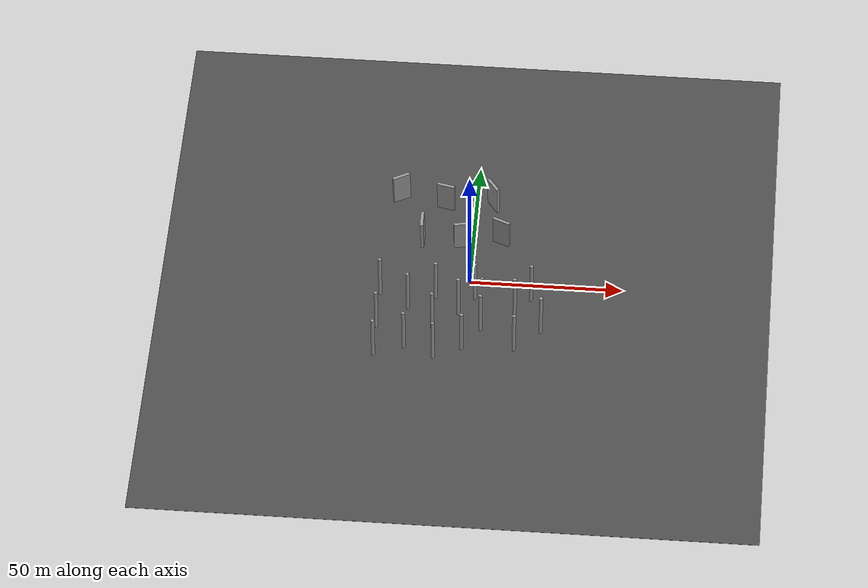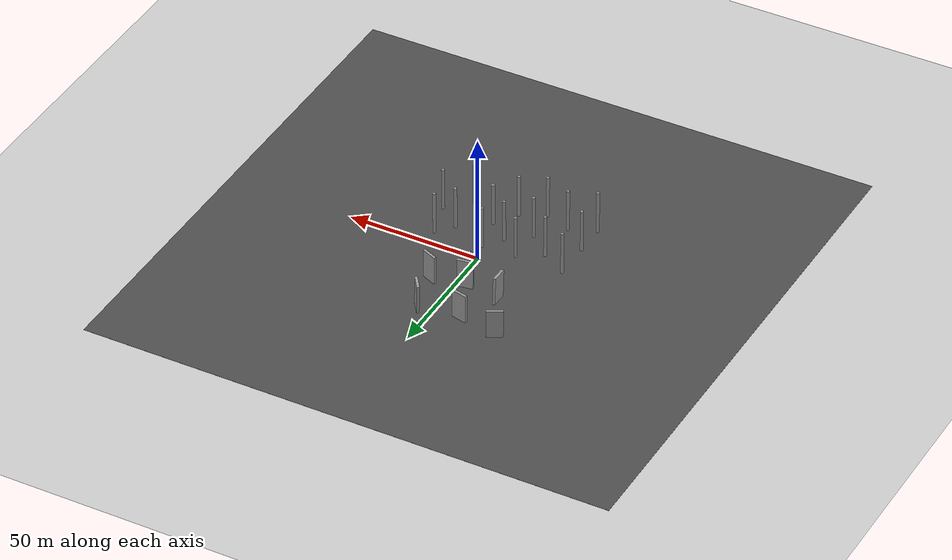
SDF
<sdf version="1.7">
 <world name="default">
  <light name="sun" type="directional">
   <pose>0 0 10 0 -0 0</pose>
   <diffuse>0.8 0.8 0.8 1</diffuse>
   <specular>0.2 0.2 0.2 1</specular>
   <attenuation>
    <range>1000</range>
    <constant>0.9</constant>
    <linear>0.01</linear>
    <quadratic>0.001</quadratic>
   </attenuation>
   <direction>-0.5 0.1 -0.9</direction>
   <spot><inner_angle>0</inner_angle><outer_angle>0</outer_angle><falloff>0</falloff></spot>
  </light>
  <model name="ground_plane">
   <static>1</static>
   <link name="link">
    <collision name="collision">
     <geometry><plane><normal>0 0 1</normal><size>100 100</size></plane></geometry>
     <surface>
      <contact><collide_bitmask>65535</collide_bitmask></contact>
      <friction><ode><mu>100</mu><mu2>50</mu2></ode></friction>
     </surface>
    </collision>
    <visual name="visual">
     <cast_shadows>0</cast_shadows>
     <geometry><plane><normal>0 0 1</normal><size>100 100</size></plane></geometry>
     <material>
      <script><uri>file://media/materials/scripts/gazebo.material</uri><name>Gazebo/Grey</name></script>
     </material>
    </visual>
   </link>
  </model>
  <gravity>0 0 -9.8</gravity>
  <magnetic_field>6e-06 2.3e-05 -4.2e-05</magnetic_field>
  <atmosphere type="adiabatic"/>
  <physics type="ode">
   <max_step_size>0.001</max_step_size>
   <real_time_factor>1</real_time_factor>
   <real_time_update_rate>1000</real_time_update_rate>
  </physics>
  <scene><ambient>0.4 0.4 0.4 1</ambient><background>0.7 0.7 0.7 1</background><shadows>1</shadows></scene>
  <spherical_coordinates>
   <surface_model>EARTH_WGS84</surface_model>
   <latitude_deg>0</latitude_deg>
   <longitude_deg>0</longitude_deg>
   <elevation>0</elevation>
   <heading_deg>0</heading_deg>
  </spherical_coordinates>
  <model name="asphalt_plane">
   <static>1</static>
   <link name="link">
    <collision name="collision"><geometry><box><size>200 200 0.1</size></box></geometry></collision>
    <visual name="visual">
     <cast_shadows>0</cast_shadows>
     <geometry><box><size>200 200 0.1</size></box></geometry>
     <material>
      <script>
       <uri>model://asphalt_plane/materials/scripts</uri>
       <uri>model://asphalt_plane/materials/textures</uri>
       <name>vrc/asphalt</name>
      </script>
     </material>
    </visual>
   </link>
   <pose>-1.35968 -2.14284 0 0 -0 0</pose>
  </model>
  <light name="sun_clone" type="directional">
   <pose>2.84123 -0.478264 10 0 -0 0</pose>
   <diffuse>0.8 0.8 0.8 1</diffuse>
   <specular>0.2 0.2 0.2 1</specular>
   <direction>-0.483368 0.096674 -0.870063</direction>
   <attenuation>
    <range>1000</range>
    <constant>0.9</constant>
    <linear>0.01</linear>
    <quadratic>0.001</quadratic>
   </attenuation>
  </light>
  <light name="sun_clone_clone" type="directional">
   <pose>5.66116 -1.0129 10 0 -0 0</pose>
   <diffuse>0.8 0.8 0.8 1</diffuse>
   <specular>0.2 0.2 0.2 1</specular>
   <direction>-0.483368 0.096674 -0.870063</direction>
   <attenuation>
    <range>1000</range>
    <constant>0.9</constant>
    <linear>0.01</linear>
    <quadratic>0.001</quadratic>
   </attenuation>
  </light>
  <model name="unit_box">
   <pose>3.98024 -0.197411 0.55 -0 -0 -0</pose>
   <link name="link">
    <inertial>
     <mass>1</mass>
     <inertia>
      <ixx>0.166667</ixx>
      <ixy>0</ixy>
      <ixz>0</ixz>
      <iyy>0.166667</iyy>
      <iyz>0</iyz>
      <izz>0.166667</izz>
     </inertia>
    </inertial>
    <collision name="collision"><geometry><box><size>1 1 1</size></box></geometry></collision>
    <visual name="visual">
     <geometry><box><size>1 1 1</size></box></geometry>
     <material>
      <script><name>Gazebo/Grey</name><uri>file://media/materials/scripts/gazebo.material</uri></script>
     </material>
    </visual>
   </link>
  </model>
  <model name="unit_cylinder">
   <pose>3.98128 1.076 0.550003 5e-06 2e-06 -1.3e-05</pose>
   <link name="link">
    <inertial>
     <mass>1</mass>
     <inertia><ixx>0.145833</ixx><ixy>0</ixy><ixz>0</ixz><iyy>0.145833</iyy><iyz>0</iyz><izz>0.125</izz></inertia>
    </inertial>
    <collision name="collision">
     <geometry><cylinder><radius>0.5</radius><length>1</length></cylinder></geometry>
    </collision>
    <visual name="visual">
     <geometry><cylinder><radius>0.5</radius><length>1</length></cylinder></geometry>
     <material>
      <script><name>Gazebo/Grey</name><uri>file://media/materials/scripts/gazebo.material</uri></script>
     </material>
    </visual>
   </link>
  </model>
  <model name="unit_sphere">
   <pose>4.10012 -1.50291 0.55 0 -0 0</pose>
   <link name="link">
    <inertial>
     <mass>1</mass>
     <inertia><ixx>0.1</ixx><ixy>0</ixy><ixz>0</ixz><iyy>0.1</iyy><iyz>0</iyz><izz>0.1</izz></inertia>
    </inertial>
    <collision name="collision"><geometry><sphere><radius>0.5</radius></sphere></geometry></collision>
    <visual name="visual">
     <geometry><sphere><radius>0.5</radius></sphere></geometry>
     <material>
      <script><name>Gazebo/Grey</name><uri>file://media/materials/scripts/gazebo.material</uri></script>
     </material>
    </visual>
   </link>
  </model>
  <model name="unit_cylinder_clone">
   <pose>2.15151 -6.79131 8.42938 -0.004958 0.002097 -0.001293</pose>
   <link name="link">
    <inertial>
     <mass>1</mass>
     <inertia><ixx>0.145833</ixx><ixy>0</ixy><ixz>0</ixz><iyy>0.145833</iyy><iyz>0</iyz><izz>0.125</izz></inertia>
    </inertial>
    <collision name="collision">
     <geometry><cylinder><radius>0.57837</radius><length>16.7528</length></cylinder></geometry>
    </collision>
    <visual name="visual">
     <geometry><cylinder><radius>0.57837</radius><length>16.7528</length></cylinder></geometry>
     <material>
      <script><name>Gazebo/Grey</name><uri>file://media/materials/scripts/gazebo.material</uri></script>
     </material>
    </visual>
   </link>
  </model>
  <model name="unit_cylinder_clone_clone">
   <pose>-2.77428 -13.6933 8.42926 -0.004731 0.002002 -0.001438</pose>
   <link name="link">
    <inertial>
     <mass>1</mass>
     <inertia><ixx>0.145833</ixx><ixy>0</ixy><ixz>0</ixz><iyy>0.145833</iyy><iyz>0</iyz><izz>0.125</izz></inertia>
    </inertial>
    <collision name="collision">
     <geometry><cylinder><radius>0.578368</radius><length>16.7528</length></cylinder></geometry>
    </collision>
    <visual name="visual">
     <geometry><cylinder><radius>0.578368</radius><length>16.7528</length></cylinder></geometry>
     <material>
      <script><name>Gazebo/Grey</name><uri>file://media/materials/scripts/gazebo.material</uri></script>
     </material>
    </visual>
   </link>
  </model>
  <model name="unit_cylinder_clone_clone_0">
   <pose>4.87741 -20.1067 8.42913 -0.004504 0.001909 -0.000852</pose>
   <link name="link">
    <inertial>
     <mass>1</mass>
     <inertia><ixx>0.145833</ixx><ixy>0</ixy><ixz>0</ixz><iyy>0.145833</iyy><iyz>0</iyz><izz>0.125</izz></inertia>
    </inertial>
    <collision name="collision">
     <geometry><cylinder><radius>0.578368</radius><length>16.7528</length></cylinder></geometry>
    </collision>
    <visual name="visual">
     <geometry><cylinder><radius>0.578368</radius><length>16.7528</length></cylinder></geometry>
     <material>
      <script><name>Gazebo/Grey</name><uri>file://media/materials/scripts/gazebo.material</uri></script>
     </material>
    </visual>
   </link>
  </model>
  <model name="unit_cylinder_clone_clone_1">
   <pose>-10.8566 -20.3137 8.42905 -0.004377 0.001855 0.000267</pose>
   <link name="link">
    <inertial>
     <mass>1</mass>
     <inertia><ixx>0.145833</ixx><ixy>0</ixy><ixz>0</ixz><iyy>0.145833</iyy><iyz>0</iyz><izz>0.125</izz></inertia>
    </inertial>
    <collision name="collision">
     <geometry><cylinder><radius>0.578368</radius><length>16.7528</length></cylinder></geometry>
    </collision>
    <visual name="visual">
     <geometry><cylinder><radius>0.578368</radius><length>16.7528</length></cylinder></geometry>
     <material>
      <script><name>Gazebo/Grey</name><uri>file://media/materials/scripts/gazebo.material</uri></script>
     </material>
    </visual>
   </link>
  </model>
  <model name="unit_cylinder_clone_clone_2">
   <pose>-10.6515 -7.30927 8.42902 -0.004312 0.001826 -0.000291</pose>
   <link name="link">
    <inertial>
     <mass>1</mass>
     <inertia><ixx>0.145833</ixx><ixy>0</ixy><ixz>0</ixz><iyy>0.145833</iyy><iyz>0</iyz><izz>0.125</izz></inertia>
    </inertial>
    <collision name="collision">
     <geometry><cylinder><radius>0.578368</radius><length>16.7528</length></cylinder></geometry>
    </collision>
    <visual name="visual">
     <geometry><cylinder><radius>0.578368</radius><length>16.7528</length></cylinder></geometry>
     <material>
      <script><name>Gazebo/Grey</name><uri>file://media/materials/scripts/gazebo.material</uri></script>
     </material>
    </visual>
   </link>
  </model>
  <model name="unit_cylinder_clone_clone_3">
   <pose>-0.607212 -28.6301 8.42896 -0.004214 0.001768 -0.001393</pose>
   <link name="link">
    <inertial>
     <mass>1</mass>
     <inertia><ixx>0.145833</ixx><ixy>0</ixy><ixz>0</ixz><iyy>0.145833</iyy><iyz>0</iyz><izz>0.125</izz></inertia>
    </inertial>
    <collision name="collision">
     <geometry><cylinder><radius>0.578368</radius><length>16.7528</length></cylinder></geometry>
    </collision>
    <visual name="visual">
     <geometry><cylinder><radius>0.578368</radius><length>16.7528</length></cylinder></geometry>
     <material>
      <script><name>Gazebo/Grey</name><uri>file://media/materials/scripts/gazebo.material</uri></script>
     </material>
    </visual>
   </link>
  </model>
  <model name="unit_cylinder_clone_clone_4">
   <pose>15.5175 -12.295 8.42891 -0.004128 0.001734 -0.000939</pose>
   <link name="link">
    <inertial>
     <mass>1</mass>
     <inertia><ixx>0.145833</ixx><ixy>0</ixy><ixz>0</ixz><iyy>0.145833</iyy><iyz>0</iyz><izz>0.125</izz></inertia>
    </inertial>
    <collision name="collision">
     <geometry><cylinder><radius>0.578368</radius><length>16.7528</length></cylinder></geometry>
    </collision>
    <visual name="visual">
     <geometry><cylinder><radius>0.578368</radius><length>16.7528</length></cylinder></geometry>
     <material>
      <script><name>Gazebo/Grey</name><uri>file://media/materials/scripts/gazebo.material</uri></script>
     </material>
    </visual>
   </link>
  </model>
  <model name="unit_cylinder_clone_clone_5">
   <pose>16.3055 -27.8801 8.42882 -0.003981 0.001682 -0.001422</pose>
   <link name="link">
    <inertial>
     <mass>1</mass>
     <inertia><ixx>0.145833</ixx><ixy>0</ixy><ixz>0</ixz><iyy>0.145833</iyy><iyz>0</iyz><izz>0.125</izz></inertia>
    </inertial>
    <collision name="collision">
     <geometry><cylinder><radius>0.578368</radius><length>16.7528</length></cylinder></geometry>
    </collision>
    <visual name="visual">
     <geometry><cylinder><radius>0.578368</radius><length>16.7528</length></cylinder></geometry>
     <material>
      <script><name>Gazebo/Grey</name><uri>file://media/materials/scripts/gazebo.material</uri></script>
     </material>
    </visual>
   </link>
  </model>
  <model name="unit_cylinder_clone_clone_6">
   <pose>-9.65267 -32.9248 8.4288 -0.003948 0.001651 -0.001048</pose>
   <link name="link">
    <inertial>
     <mass>1</mass>
     <inertia><ixx>0.145833</ixx><ixy>0</ixy><ixz>0</ixz><iyy>0.145833</iyy><iyz>0</iyz><izz>0.125</izz></inertia>
    </inertial>
    <collision name="collision">
     <geometry><cylinder><radius>0.578368</radius><length>16.7528</length></cylinder></geometry>
    </collision>
    <visual name="visual">
     <geometry><cylinder><radius>0.578368</radius><length>16.7528</length></cylinder></geometry>
     <material>
      <script><name>Gazebo/Grey</name><uri>file://media/materials/scripts/gazebo.material</uri></script>
     </material>
    </visual>
   </link>
  </model>
  <model name="unit_cylinder_clone_clone_7">
   <pose>-19.4026 -12.5562 8.42873 -0.003831 0.00163 4e-06</pose>
   <link name="link">
    <inertial>
     <mass>1</mass>
     <inertia><ixx>0.145833</ixx><ixy>0</ixy><ixz>0</ixz><iyy>0.145833</iyy><iyz>0</iyz><izz>0.125</izz></inertia>
    </inertial>
    <collision name="collision">
     <geometry><cylinder><radius>0.578368</radius><length>16.7528</length></cylinder></geometry>
    </collision>
    <visual name="visual">
     <geometry><cylinder><radius>0.578368</radius><length>16.7528</length></cylinder></geometry>
     <material>
      <script><name>Gazebo/Grey</name><uri>file://media/materials/scripts/gazebo.material</uri></script>
     </material>
    </visual>
   </link>
  </model>
  <model name="unit_cylinder_clone_clone_8">
   <pose>-19.3928 -29.3507 8.42866 -0.00369 0.001614 -0.002442</pose>
   <link name="link">
    <inertial>
     <mass>1</mass>
     <inertia><ixx>0.145833</ixx><ixy>0</ixy><ixz>0</ixz><iyy>0.145833</iyy><iyz>0</iyz><izz>0.125</izz></inertia>
    </inertial>
    <collision name="collision">
     <geometry><cylinder><radius>0.578368</radius><length>16.7528</length></cylinder></geometry>
    </collision>
    <visual name="visual">
     <geometry><cylinder><radius>0.578368</radius><length>16.7528</length></cylinder></geometry>
     <material>
      <script><name>Gazebo/Grey</name><uri>file://media/materials/scripts/gazebo.material</uri></script>
     </material>
    </visual>
   </link>
  </model>
  <model name="unit_cylinder_clone_clone_9">
   <pose>-28.9779 -21.3017 8.42863 -0.003657 0.001548 -0.001157</pose>
   <link name="link">
    <inertial>
     <mass>1</mass>
     <inertia><ixx>0.145833</ixx><ixy>0</ixy><ixz>0</ixz><iyy>0.145833</iyy><iyz>0</iyz><izz>0.125</izz></inertia>
    </inertial>
    <collision name="collision">
     <geometry><cylinder><radius>0.578368</radius><length>16.7528</length></cylinder></geometry>
    </collision>
    <visual name="visual">
     <geometry><cylinder><radius>0.578368</radius><length>16.7528</length></cylinder></geometry>
     <material>
      <script><name>Gazebo/Grey</name><uri>file://media/materials/scripts/gazebo.material</uri></script>
     </material>
    </visual>
   </link>
  </model>
  <model name="unit_cylinder_clone_clone_10">
   <pose>-28.9643 -6.92442 8.42862 -0.003637 0.001528 7e-05</pose>
   <link name="link">
    <inertial>
     <mass>1</mass>
     <inertia><ixx>0.145833</ixx><ixy>0</ixy><ixz>0</ixz><iyy>0.145833</iyy><iyz>0</iyz><izz>0.125</izz></inertia>
    </inertial>
    <collision name="collision">
     <geometry><cylinder><radius>0.578368</radius><length>16.7528</length></cylinder></geometry>
    </collision>
    <visual name="visual">
     <geometry><cylinder><radius>0.578368</radius><length>16.7528</length></cylinder></geometry>
     <material>
      <script><name>Gazebo/Grey</name><uri>file://media/materials/scripts/gazebo.material</uri></script>
     </material>
    </visual>
   </link>
  </model>
  <model name="unit_cylinder_clone_clone_11">
   <pose>-28.9887 -33.2194 8.4285 -0.003436 0.001521 -0.002362</pose>
   <link name="link">
    <inertial>
     <mass>1</mass>
     <inertia><ixx>0.145833</ixx><ixy>0</ixy><ixz>0</ixz><iyy>0.145833</iyy><iyz>0</iyz><izz>0.125</izz></inertia>
    </inertial>
    <collision name="collision">
     <geometry><cylinder><radius>0.578368</radius><length>16.7528</length></cylinder></geometry>
    </collision>
    <visual name="visual">
     <geometry><cylinder><radius>0.578368</radius><length>16.7528</length></cylinder></geometry>
     <material>
      <script><name>Gazebo/Grey</name><uri>file://media/materials/scripts/gazebo.material</uri></script>
     </material>
    </visual>
   </link>
  </model>
  <model name="unit_cylinder_clone_clone_12">
   <pose>20.5283 -6.24584 8.42843 -0.003325 0.001409 0.000549</pose>
   <link name="link">
    <inertial>
     <mass>1</mass>
     <inertia><ixx>0.145833</ixx><ixy>0</ixy><ixz>0</ixz><iyy>0.145833</iyy><iyz>0</iyz><izz>0.125</izz></inertia>
    </inertial>
    <collision name="collision">
     <geometry><cylinder><radius>0.578368</radius><length>16.7528</length></cylinder></geometry>
    </collision>
    <visual name="visual">
     <geometry><cylinder><radius>0.578368</radius><length>16.7528</length></cylinder></geometry>
     <material>
      <script><name>Gazebo/Grey</name><uri>file://media/materials/scripts/gazebo.material</uri></script>
     </material>
    </visual>
   </link>
  </model>
  <model name="unit_cylinder_clone_clone_13">
   <pose>24.4811 -19.743 8.42832 -0.003101 0.001387 -0.000887</pose>
   <link name="link">
    <inertial>
     <mass>1</mass>
     <inertia><ixx>0.145833</ixx><ixy>0</ixy><ixz>0</ixz><iyy>0.145833</iyy><iyz>0</iyz><izz>0.125</izz></inertia>
    </inertial>
    <collision name="collision">
     <geometry><cylinder><radius>0.578368</radius><length>16.7528</length></cylinder></geometry>
    </collision>
    <visual name="visual">
     <geometry><cylinder><radius>0.578368</radius><length>16.7528</length></cylinder></geometry>
     <material>
      <script><name>Gazebo/Grey</name><uri>file://media/materials/scripts/gazebo.material</uri></script>
     </material>
    </visual>
   </link>
  </model>
  <model name="unit_box_0">
   <pose>-3.55434 15.6884 5.59878 -0.002154 -0.007429 1.70553</pose>
   <link name="link">
    <inertial>
     <mass>1</mass>
     <inertia>
      <ixx>0.166667</ixx>
      <ixy>0</ixy>
      <ixz>0</ixz>
      <iyy>0.166667</iyy>
      <iyz>0</iyz>
      <izz>0.166667</izz>
     </inertia>
    </inertial>
    <collision name="collision"><geometry><box><size>1 5.9412 11.0777</size></box></geometry></collision>
    <visual name="visual">
     <geometry><box><size>1 5.9412 11.0777</size></box></geometry>
     <material>
      <script><name>Gazebo/Grey</name><uri>file://media/materials/scripts/gazebo.material</uri></script>
     </material>
    </visual>
   </link>
  </model>
  <model name="unit_box_0_clone">
   <pose>9.021 17.9694 5.59832 -0.002033 -0.007244 1.16702</pose>
   <link name="link">
    <inertial>
     <mass>1</mass>
     <inertia>
      <ixx>0.166667</ixx>
      <ixy>0</ixy>
      <ixz>0</ixz>
      <iyy>0.166667</iyy>
      <iyz>0</iyz>
      <izz>0.166667</izz>
     </inertia>
    </inertial>
    <collision name="collision"><geometry><box><size>1 5.94121 11.0777</size></box></geometry></collision>
    <visual name="visual">
     <geometry><box><size>1 5.94121 11.0777</size></box></geometry>
     <material>
      <script><name>Gazebo/Grey</name><uri>file://media/materials/scripts/gazebo.material</uri></script>
     </material>
    </visual>
   </link>
  </model>
  <model name="unit_box_0_clone_0">
   <pose>-16.9816 17.0047 5.62099 0.007395 -0.023873 -0.000997</pose>
   <link name="link">
    <inertial>
     <mass>1</mass>
     <inertia>
      <ixx>0.166667</ixx>
      <ixy>0</ixy>
      <ixz>0</ixz>
      <iyy>0.166667</iyy>
      <iyz>0</iyz>
      <izz>0.166667</izz>
     </inertia>
    </inertial>
    <collision name="collision"><geometry><box><size>1 5.94121 11.0777</size></box></geometry></collision>
    <visual name="visual">
     <geometry><box><size>1 5.94121 11.0777</size></box></geometry>
     <material>
      <script><name>Gazebo/Grey</name><uri>file://media/materials/scripts/gazebo.material</uri></script>
     </material>
    </visual>
   </link>
  </model>
  <model name="unit_box_0_clone_2">
   <pose>-10.3827 32.2705 5.61034 -0.006498 -0.004792 1.34157</pose>
   <link name="link">
    <inertial>
     <mass>1</mass>
     <inertia>
      <ixx>0.166667</ixx>
      <ixy>0</ixy>
      <ixz>0</ixz>
      <iyy>0.166667</iyy>
      <iyz>0</iyz>
      <izz>0.166667</izz>
     </inertia>
    </inertial>
    <collision name="collision"><geometry><box><size>1 5.94121 11.0777</size></box></geometry></collision>
    <visual name="visual">
     <geometry><box><size>1 5.94121 11.0777</size></box></geometry>
     <material>
      <script><name>Gazebo/Grey</name><uri>file://media/materials/scripts/gazebo.material</uri></script>
     </material>
    </visual>
   </link>
  </model>
  <model name="unit_box_0_clone_3">
   <pose>5.28244 33.7508 5.59841 -0.000542 -0.017711 0.61948</pose>
   <link name="link">
    <inertial>
     <mass>1</mass>
     <inertia>
      <ixx>0.166667</ixx>
      <ixy>0</ixy>
      <ixz>0</ixz>
      <iyy>0.166667</iyy>
      <iyz>0</iyz>
      <izz>0.166667</izz>
     </inertia>
    </inertial>
    <collision name="collision"><geometry><box><size>1 5.94121 11.0777</size></box></geometry></collision>
    <visual name="visual">
     <geometry><box><size>1 5.94121 11.0777</size></box></geometry>
     <material>
      <script><name>Gazebo/Grey</name><uri>file://media/materials/scripts/gazebo.material</uri></script>
     </material>
    </visual>
   </link>
  </model>
  <model name="unit_box_0_clone_1_clone">
   <pose>-25.4514 35.1789 5.64281 0.015738 -0.017584 -1.09596</pose>
   <link name="link">
    <inertial>
     <mass>1</mass>
     <inertia>
      <ixx>0.166667</ixx>
      <ixy>0</ixy>
      <ixz>0</ixz>
      <iyy>0.166667</iyy>
      <iyz>0</iyz>
      <izz>0.166667</izz>
     </inertia>
    </inertial>
    <collision name="collision"><geometry><box><size>1 5.94121 11.0777</size></box></geometry></collision>
    <visual name="visual">
     <geometry><box><size>1 5.94121 11.0777</size></box></geometry>
     <material>
      <script><name>Gazebo/Grey</name><uri>file://media/materials/scripts/gazebo.material</uri></script>
     </material>
    </visual>
   </link>
  </model>
 </world>
</sdf>
